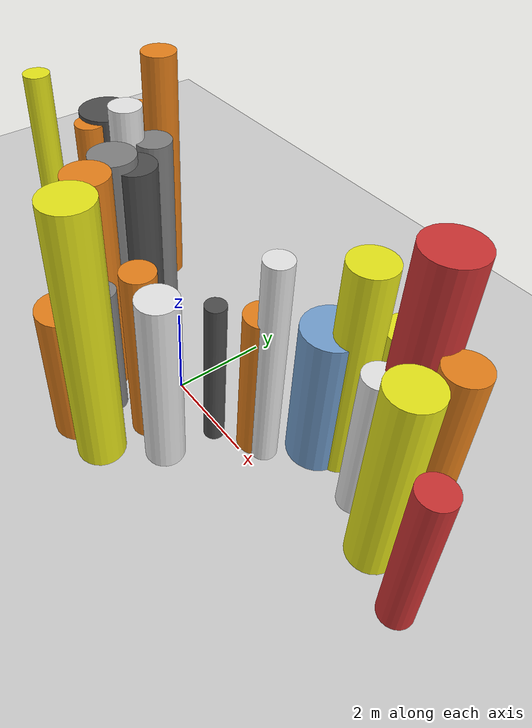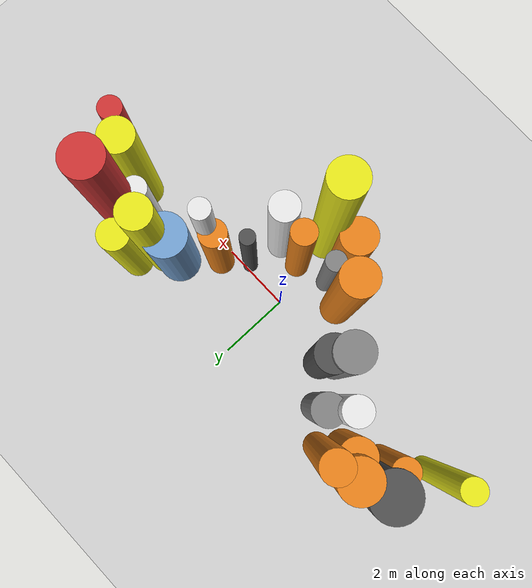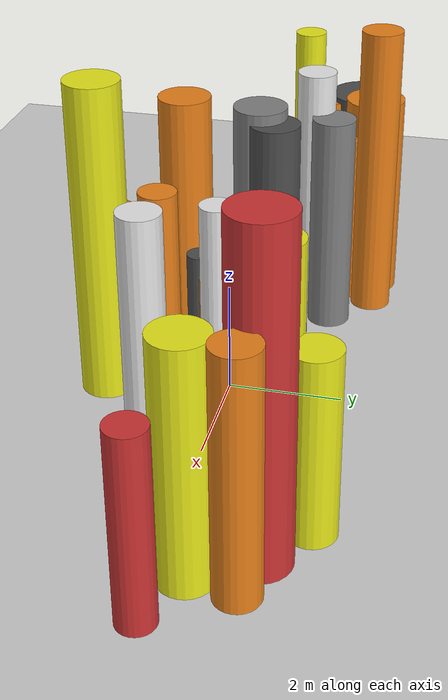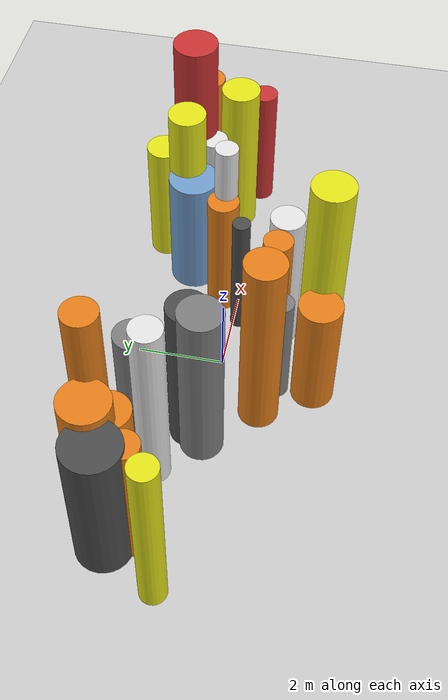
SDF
<?xml version='1.0'?>
<sdf version='1.6'>
  <world name='routeA_rl_v1__dense_recovery__rl_train__s_turn_multi_obstacle__000097'>
    <!-- Sun light -->
    <light name='sun' type='directional'>
      <cast_shadows>1</cast_shadows>
      <pose>0 0 10 0 0 0</pose>
      <diffuse>0.8 0.8 0.8 1</diffuse>
      <specular>0.2 0.2 0.2 1</specular>
      <attenuation>
        <range>1000</range>
        <constant>0.9</constant>
        <linear>0.01</linear>
        <quadratic>0.001</quadratic>
      </attenuation>
      <direction>-0.5 0.1 -0.9</direction>
    </light>

    <!-- Ground plane -->
    <model name='ground_plane'>
      <static>1</static>
      <link name='link'>
        <collision name='collision'>
          <geometry>
            <plane>
              <normal>0 0 1</normal>
              <size>100 100</size>
            </plane>
          </geometry>
          <surface>
            <contact>
              <collide_bitmask>65535</collide_bitmask>
              <ode/>
            </contact>
            <friction>
              <ode>
                <mu>100</mu>
                <mu2>50</mu2>
              </ode>
              <torsional><ode/></torsional>
            </friction>
            <bounce/>
          </surface>
          <max_contacts>10</max_contacts>
        </collision>
        <visual name='visual'>
          <cast_shadows>0</cast_shadows>
          <geometry>
            <plane>
              <normal>0 0 1</normal>
              <size>100 100</size>
            </plane>
          </geometry>
          <material>
            <script>
              <uri>file://media/materials/scripts/gazebo.material</uri>
              <n>Gazebo/Grey</n>
            </script>
          </material>
        </visual>
      </link>
    </model>

    <!-- Environment -->
    <magnetic_field>6e-06 2.3e-05 -4.2e-05</magnetic_field>
    <atmosphere type='adiabatic'/>
    <physics name='default_physics' default='0' type='ode'>
      <gravity>0 0 -9.8</gravity>
      <max_step_size>0.004</max_step_size>
      <real_time_factor>1</real_time_factor>
      <real_time_update_rate>250</real_time_update_rate>
    </physics>
    <scene>
      <ambient>0.4 0.4 0.4 1</ambient>
      <background>0.7 0.7 0.7 1</background>
      <shadows>1</shadows>
    </scene>
    <wind/>
    <spherical_coordinates>
      <surface_model>EARTH_WGS84</surface_model>
      <latitude_deg>0</latitude_deg>
      <longitude_deg>0</longitude_deg>
      <elevation>0</elevation>
      <heading_deg>0</heading_deg>
    </spherical_coordinates>

    <!-- ============ OBSTACLES (28) ============ -->
    <model name='s_turn_obs_0'>
      <static>1</static>
      <link name='link'>
        <visual name='visual'>
          <geometry>
            <cylinder>
              <radius>0.3040</radius>
              <length>4.6498</length>
            </cylinder>
          </geometry>
          <material>
            <script>
              <n>Gazebo/Yellow</n>
              <uri>file://media/materials/scripts/gazebo.material</uri>
            </script>
            <ambient>0.9 0.9 0.1 1</ambient>
          </material>
        </visual>
        <collision name='collision'>
          <geometry>
            <cylinder>
              <radius>0.3040</radius>
              <length>4.6498</length>
            </cylinder>
          </geometry>
          <max_contacts>10</max_contacts>
          <surface>
            <contact><ode/></contact>
            <bounce/>
            <friction>
              <ode><mu>1</mu><mu2>1</mu2></ode>
              <torsional><ode/></torsional>
            </friction>
          </surface>
        </collision>
      </link>
      <pose>-6.0000 0.2624 2.3249 0 0 0.0000</pose>
    </model>

    <model name='s_turn_obs_1'>
      <static>1</static>
      <link name='link'>
        <visual name='visual'>
          <geometry>
            <cylinder>
              <radius>0.6316</radius>
              <length>3.7598</length>
            </cylinder>
          </geometry>
          <material>
            <script>
              <n>Gazebo/DarkGrey</n>
              <uri>file://media/materials/scripts/gazebo.material</uri>
            </script>
            <ambient>0.3 0.3 0.3 1</ambient>
          </material>
        </visual>
        <collision name='collision'>
          <geometry>
            <cylinder>
              <radius>0.6316</radius>
              <length>3.7598</length>
            </cylinder>
          </geometry>
          <max_contacts>10</max_contacts>
          <surface>
            <contact><ode/></contact>
            <bounce/>
            <friction>
              <ode><mu>1</mu><mu2>1</mu2></ode>
              <torsional><ode/></torsional>
            </friction>
          </surface>
        </collision>
      </link>
      <pose>-5.2000 1.4873 1.8799 0 0 0.0000</pose>
    </model>

    <model name='s_turn_obs_2'>
      <static>1</static>
      <link name='link'>
        <visual name='visual'>
          <geometry>
            <cylinder>
              <radius>0.5539</radius>
              <length>3.9571</length>
            </cylinder>
          </geometry>
          <material>
            <script>
              <n>Gazebo/Orange</n>
              <uri>file://media/materials/scripts/gazebo.material</uri>
            </script>
            <ambient>0.9 0.5 0.1 1</ambient>
          </material>
        </visual>
        <collision name='collision'>
          <geometry>
            <cylinder>
              <radius>0.5539</radius>
              <length>3.9571</length>
            </cylinder>
          </geometry>
          <max_contacts>10</max_contacts>
          <surface>
            <contact><ode/></contact>
            <bounce/>
            <friction>
              <ode><mu>1</mu><mu2>1</mu2></ode>
              <torsional><ode/></torsional>
            </friction>
          </surface>
        </collision>
      </link>
      <pose>-4.4000 1.8220 1.9786 0 0 0.0000</pose>
    </model>

    <model name='s_turn_obs_3'>
      <static>1</static>
      <link name='link'>
        <visual name='visual'>
          <geometry>
            <cylinder>
              <radius>0.3790</radius>
              <length>5.5660</length>
            </cylinder>
          </geometry>
          <material>
            <script>
              <n>Gazebo/Orange</n>
              <uri>file://media/materials/scripts/gazebo.material</uri>
            </script>
            <ambient>0.9 0.5 0.1 1</ambient>
          </material>
        </visual>
        <collision name='collision'>
          <geometry>
            <cylinder>
              <radius>0.3790</radius>
              <length>5.5660</length>
            </cylinder>
          </geometry>
          <max_contacts>10</max_contacts>
          <surface>
            <contact><ode/></contact>
            <bounce/>
            <friction>
              <ode><mu>1</mu><mu2>1</mu2></ode>
              <torsional><ode/></torsional>
            </friction>
          </surface>
        </collision>
      </link>
      <pose>-3.6000 1.9891 2.7830 0 0 0.0000</pose>
    </model>

    <model name='s_turn_obs_4'>
      <static>1</static>
      <link name='link'>
        <visual name='visual'>
          <geometry>
            <cylinder>
              <radius>0.4001</radius>
              <length>4.1296</length>
            </cylinder>
          </geometry>
          <material>
            <script>
              <n>Gazebo/Grey</n>
              <uri>file://media/materials/scripts/gazebo.material</uri>
            </script>
            <ambient>0.5 0.5 0.5 1</ambient>
          </material>
        </visual>
        <collision name='collision'>
          <geometry>
            <cylinder>
              <radius>0.4001</radius>
              <length>4.1296</length>
            </cylinder>
          </geometry>
          <max_contacts>10</max_contacts>
          <surface>
            <contact><ode/></contact>
            <bounce/>
            <friction>
              <ode><mu>1</mu><mu2>1</mu2></ode>
              <torsional><ode/></torsional>
            </friction>
          </surface>
        </collision>
      </link>
      <pose>-2.8000 1.2855 2.0648 0 0 0.0000</pose>
    </model>

    <model name='s_turn_obs_5'>
      <static>1</static>
      <link name='link'>
        <visual name='visual'>
          <geometry>
            <cylinder>
              <radius>0.4592</radius>
              <length>4.2537</length>
            </cylinder>
          </geometry>
          <material>
            <script>
              <n>Gazebo/DarkGrey</n>
              <uri>file://media/materials/scripts/gazebo.material</uri>
            </script>
            <ambient>0.3 0.3 0.3 1</ambient>
          </material>
        </visual>
        <collision name='collision'>
          <geometry>
            <cylinder>
              <radius>0.4592</radius>
              <length>4.2537</length>
            </cylinder>
          </geometry>
          <max_contacts>10</max_contacts>
          <surface>
            <contact><ode/></contact>
            <bounce/>
            <friction>
              <ode><mu>1</mu><mu2>1</mu2></ode>
              <torsional><ode/></torsional>
            </friction>
          </surface>
        </collision>
      </link>
      <pose>-2.0000 0.3585 2.1269 0 0 0.0000</pose>
    </model>

    <model name='s_turn_obs_6'>
      <static>1</static>
      <link name='link'>
        <visual name='visual'>
          <geometry>
            <cylinder>
              <radius>0.4593</radius>
              <length>4.9485</length>
            </cylinder>
          </geometry>
          <material>
            <script>
              <n>Gazebo/Orange</n>
              <uri>file://media/materials/scripts/gazebo.material</uri>
            </script>
            <ambient>0.9 0.5 0.1 1</ambient>
          </material>
        </visual>
        <collision name='collision'>
          <geometry>
            <cylinder>
              <radius>0.4593</radius>
              <length>4.9485</length>
            </cylinder>
          </geometry>
          <max_contacts>10</max_contacts>
          <surface>
            <contact><ode/></contact>
            <bounce/>
            <friction>
              <ode><mu>1</mu><mu2>1</mu2></ode>
              <torsional><ode/></torsional>
            </friction>
          </surface>
        </collision>
      </link>
      <pose>-1.2000 -1.0525 2.4742 0 0 0.0000</pose>
    </model>

    <model name='s_turn_obs_7'>
      <static>1</static>
      <link name='link'>
        <visual name='visual'>
          <geometry>
            <cylinder>
              <radius>0.4913</radius>
              <length>3.0375</length>
            </cylinder>
          </geometry>
          <material>
            <script>
              <n>Gazebo/Orange</n>
              <uri>file://media/materials/scripts/gazebo.material</uri>
            </script>
            <ambient>0.9 0.5 0.1 1</ambient>
          </material>
        </visual>
        <collision name='collision'>
          <geometry>
            <cylinder>
              <radius>0.4913</radius>
              <length>3.0375</length>
            </cylinder>
          </geometry>
          <max_contacts>10</max_contacts>
          <surface>
            <contact><ode/></contact>
            <bounce/>
            <friction>
              <ode><mu>1</mu><mu2>1</mu2></ode>
              <torsional><ode/></torsional>
            </friction>
          </surface>
        </collision>
      </link>
      <pose>-0.4000 -2.1757 1.5187 0 0 0.0000</pose>
    </model>

    <model name='s_turn_obs_8'>
      <static>1</static>
      <link name='link'>
        <visual name='visual'>
          <geometry>
            <cylinder>
              <radius>0.4744</radius>
              <length>5.7330</length>
            </cylinder>
          </geometry>
          <material>
            <script>
              <n>Gazebo/Yellow</n>
              <uri>file://media/materials/scripts/gazebo.material</uri>
            </script>
            <ambient>0.9 0.9 0.1 1</ambient>
          </material>
        </visual>
        <collision name='collision'>
          <geometry>
            <cylinder>
              <radius>0.4744</radius>
              <length>5.7330</length>
            </cylinder>
          </geometry>
          <max_contacts>10</max_contacts>
          <surface>
            <contact><ode/></contact>
            <bounce/>
            <friction>
              <ode><mu>1</mu><mu2>1</mu2></ode>
              <torsional><ode/></torsional>
            </friction>
          </surface>
        </collision>
      </link>
      <pose>0.4000 -2.1245 2.8665 0 0 0.0000</pose>
    </model>

    <model name='s_turn_obs_9'>
      <static>1</static>
      <link name='link'>
        <visual name='visual'>
          <geometry>
            <cylinder>
              <radius>0.3886</radius>
              <length>3.8908</length>
            </cylinder>
          </geometry>
          <material>
            <script>
              <n>Gazebo/White</n>
              <uri>file://media/materials/scripts/gazebo.material</uri>
            </script>
            <ambient>0.9 0.9 0.9 1</ambient>
          </material>
        </visual>
        <collision name='collision'>
          <geometry>
            <cylinder>
              <radius>0.3886</radius>
              <length>3.8908</length>
            </cylinder>
          </geometry>
          <max_contacts>10</max_contacts>
          <surface>
            <contact><ode/></contact>
            <bounce/>
            <friction>
              <ode><mu>1</mu><mu2>1</mu2></ode>
              <torsional><ode/></torsional>
            </friction>
          </surface>
        </collision>
      </link>
      <pose>1.2000 -1.1757 1.9454 0 0 0.0000</pose>
    </model>

    <model name='s_turn_obs_10'>
      <static>1</static>
      <link name='link'>
        <visual name='visual'>
          <geometry>
            <cylinder>
              <radius>0.3665</radius>
              <length>3.3261</length>
            </cylinder>
          </geometry>
          <material>
            <script>
              <n>Gazebo/Orange</n>
              <uri>file://media/materials/scripts/gazebo.material</uri>
            </script>
            <ambient>0.9 0.5 0.1 1</ambient>
          </material>
        </visual>
        <collision name='collision'>
          <geometry>
            <cylinder>
              <radius>0.3665</radius>
              <length>3.3261</length>
            </cylinder>
          </geometry>
          <max_contacts>10</max_contacts>
          <surface>
            <contact><ode/></contact>
            <bounce/>
            <friction>
              <ode><mu>1</mu><mu2>1</mu2></ode>
              <torsional><ode/></torsional>
            </friction>
          </surface>
        </collision>
      </link>
      <pose>2.0000 0.3983 1.6631 0 0 0.0000</pose>
    </model>

    <model name='s_turn_obs_11'>
      <static>1</static>
      <link name='link'>
        <visual name='visual'>
          <geometry>
            <cylinder>
              <radius>0.5840</radius>
              <length>3.1665</length>
            </cylinder>
          </geometry>
          <material>
            <script>
              <n>Gazebo/Blue</n>
              <uri>file://media/materials/scripts/gazebo.material</uri>
            </script>
            <ambient>0.447 0.624 0.812 1</ambient>
          </material>
        </visual>
        <collision name='collision'>
          <geometry>
            <cylinder>
              <radius>0.5840</radius>
              <length>3.1665</length>
            </cylinder>
          </geometry>
          <max_contacts>10</max_contacts>
          <surface>
            <contact><ode/></contact>
            <bounce/>
            <friction>
              <ode><mu>1</mu><mu2>1</mu2></ode>
              <torsional><ode/></torsional>
            </friction>
          </surface>
        </collision>
      </link>
      <pose>2.8000 1.2576 1.5833 0 0 0.0000</pose>
    </model>

    <model name='s_turn_obs_12'>
      <static>1</static>
      <link name='link'>
        <visual name='visual'>
          <geometry>
            <cylinder>
              <radius>0.4106</radius>
              <length>3.2779</length>
            </cylinder>
          </geometry>
          <material>
            <script>
              <n>Gazebo/Yellow</n>
              <uri>file://media/materials/scripts/gazebo.material</uri>
            </script>
            <ambient>0.9 0.9 0.1 1</ambient>
          </material>
        </visual>
        <collision name='collision'>
          <geometry>
            <cylinder>
              <radius>0.4106</radius>
              <length>3.2779</length>
            </cylinder>
          </geometry>
          <max_contacts>10</max_contacts>
          <surface>
            <contact><ode/></contact>
            <bounce/>
            <friction>
              <ode><mu>1</mu><mu2>1</mu2></ode>
              <torsional><ode/></torsional>
            </friction>
          </surface>
        </collision>
      </link>
      <pose>3.6000 2.1407 1.6390 0 0 0.0000</pose>
    </model>

    <model name='s_turn_obs_13'>
      <static>1</static>
      <link name='link'>
        <visual name='visual'>
          <geometry>
            <cylinder>
              <radius>0.5122</radius>
              <length>5.7580</length>
            </cylinder>
          </geometry>
          <material>
            <script>
              <n>Gazebo/Red</n>
              <uri>file://media/materials/scripts/gazebo.material</uri>
            </script>
            <ambient>0.8 0.2 0.2 1</ambient>
          </material>
        </visual>
        <collision name='collision'>
          <geometry>
            <cylinder>
              <radius>0.5122</radius>
              <length>5.7580</length>
            </cylinder>
          </geometry>
          <max_contacts>10</max_contacts>
          <surface>
            <contact><ode/></contact>
            <bounce/>
            <friction>
              <ode><mu>1</mu><mu2>1</mu2></ode>
              <torsional><ode/></torsional>
            </friction>
          </surface>
        </collision>
      </link>
      <pose>4.4000 1.5222 2.8790 0 0 0.0000</pose>
    </model>

    <model name='s_turn_obs_14'>
      <static>1</static>
      <link name='link'>
        <visual name='visual'>
          <geometry>
            <cylinder>
              <radius>0.3800</radius>
              <length>4.2015</length>
            </cylinder>
          </geometry>
          <material>
            <script>
              <n>Gazebo/Orange</n>
              <uri>file://media/materials/scripts/gazebo.material</uri>
            </script>
            <ambient>0.9 0.5 0.1 1</ambient>
          </material>
        </visual>
        <collision name='collision'>
          <geometry>
            <cylinder>
              <radius>0.3800</radius>
              <length>4.2015</length>
            </cylinder>
          </geometry>
          <max_contacts>10</max_contacts>
          <surface>
            <contact><ode/></contact>
            <bounce/>
            <friction>
              <ode><mu>1</mu><mu2>1</mu2></ode>
              <torsional><ode/></torsional>
            </friction>
          </surface>
        </collision>
      </link>
      <pose>5.2000 1.3676 2.1007 0 0 0.0000</pose>
    </model>

    <model name='s_turn_obs_15'>
      <static>1</static>
      <link name='link'>
        <visual name='visual'>
          <geometry>
            <cylinder>
              <radius>0.3203</radius>
              <length>3.3130</length>
            </cylinder>
          </geometry>
          <material>
            <script>
              <n>Gazebo/Red</n>
              <uri>file://media/materials/scripts/gazebo.material</uri>
            </script>
            <ambient>0.8 0.2 0.2 1</ambient>
          </material>
        </visual>
        <collision name='collision'>
          <geometry>
            <cylinder>
              <radius>0.3203</radius>
              <length>3.3130</length>
            </cylinder>
          </geometry>
          <max_contacts>10</max_contacts>
          <surface>
            <contact><ode/></contact>
            <bounce/>
            <friction>
              <ode><mu>1</mu><mu2>1</mu2></ode>
              <torsional><ode/></torsional>
            </friction>
          </surface>
        </collision>
      </link>
      <pose>6.0000 0.1179 1.6565 0 0 0.0000</pose>
    </model>

    <model name='s_turn_obs2_0'>
      <static>1</static>
      <link name='link'>
        <visual name='visual'>
          <geometry>
            <cylinder>
              <radius>0.3457</radius>
              <length>3.6675</length>
            </cylinder>
          </geometry>
          <material>
            <script>
              <n>Gazebo/Orange</n>
              <uri>file://media/materials/scripts/gazebo.material</uri>
            </script>
            <ambient>0.9 0.5 0.1 1</ambient>
          </material>
        </visual>
        <collision name='collision'>
          <geometry>
            <cylinder>
              <radius>0.3457</radius>
              <length>3.6675</length>
            </cylinder>
          </geometry>
          <max_contacts>10</max_contacts>
          <surface>
            <contact><ode/></contact>
            <bounce/>
            <friction>
              <ode><mu>1</mu><mu2>1</mu2></ode>
              <torsional><ode/></torsional>
            </friction>
          </surface>
        </collision>
      </link>
      <pose>-5.0000 0.9364 1.8337 0 0 0.0000</pose>
    </model>

    <model name='s_turn_obs2_1'>
      <static>1</static>
      <link name='link'>
        <visual name='visual'>
          <geometry>
            <cylinder>
              <radius>0.4718</radius>
              <length>3.3409</length>
            </cylinder>
          </geometry>
          <material>
            <script>
              <n>Gazebo/Orange</n>
              <uri>file://media/materials/scripts/gazebo.material</uri>
            </script>
            <ambient>0.9 0.5 0.1 1</ambient>
          </material>
        </visual>
        <collision name='collision'>
          <geometry>
            <cylinder>
              <radius>0.4718</radius>
              <length>3.3409</length>
            </cylinder>
          </geometry>
          <max_contacts>10</max_contacts>
          <surface>
            <contact><ode/></contact>
            <bounce/>
            <friction>
              <ode><mu>1</mu><mu2>1</mu2></ode>
              <torsional><ode/></torsional>
            </friction>
          </surface>
        </collision>
      </link>
      <pose>-4.0909 1.4737 1.6704 0 0 0.0000</pose>
    </model>

    <model name='s_turn_obs2_2'>
      <static>1</static>
      <link name='link'>
        <visual name='visual'>
          <geometry>
            <cylinder>
              <radius>0.3536</radius>
              <length>4.8455</length>
            </cylinder>
          </geometry>
          <material>
            <script>
              <n>Gazebo/White</n>
              <uri>file://media/materials/scripts/gazebo.material</uri>
            </script>
            <ambient>0.9 0.9 0.9 1</ambient>
          </material>
        </visual>
        <collision name='collision'>
          <geometry>
            <cylinder>
              <radius>0.3536</radius>
              <length>4.8455</length>
            </cylinder>
          </geometry>
          <max_contacts>10</max_contacts>
          <surface>
            <contact><ode/></contact>
            <bounce/>
            <friction>
              <ode><mu>1</mu><mu2>1</mu2></ode>
              <torsional><ode/></torsional>
            </friction>
          </surface>
        </collision>
      </link>
      <pose>-3.1818 0.8929 2.4228 0 0 0.0000</pose>
    </model>

    <model name='s_turn_obs2_3'>
      <static>1</static>
      <link name='link'>
        <visual name='visual'>
          <geometry>
            <cylinder>
              <radius>0.4893</radius>
              <length>4.4534</length>
            </cylinder>
          </geometry>
          <material>
            <script>
              <n>Gazebo/Grey</n>
              <uri>file://media/materials/scripts/gazebo.material</uri>
            </script>
            <ambient>0.5 0.5 0.5 1</ambient>
          </material>
        </visual>
        <collision name='collision'>
          <geometry>
            <cylinder>
              <radius>0.4893</radius>
              <length>4.4534</length>
            </cylinder>
          </geometry>
          <max_contacts>10</max_contacts>
          <surface>
            <contact><ode/></contact>
            <bounce/>
            <friction>
              <ode><mu>1</mu><mu2>1</mu2></ode>
              <torsional><ode/></torsional>
            </friction>
          </surface>
        </collision>
      </link>
      <pose>-2.2727 0.0371 2.2267 0 0 0.0000</pose>
    </model>

    <model name='s_turn_obs2_4'>
      <static>1</static>
      <link name='link'>
        <visual name='visual'>
          <geometry>
            <cylinder>
              <radius>0.2072</radius>
              <length>3.7179</length>
            </cylinder>
          </geometry>
          <material>
            <script>
              <n>Gazebo/White</n>
              <uri>file://media/materials/scripts/gazebo.material</uri>
            </script>
            <ambient>0.9 0.9 0.9 1</ambient>
          </material>
        </visual>
        <collision name='collision'>
          <geometry>
            <cylinder>
              <radius>0.2072</radius>
              <length>3.7179</length>
            </cylinder>
          </geometry>
          <max_contacts>10</max_contacts>
          <surface>
            <contact><ode/></contact>
            <bounce/>
            <friction>
              <ode><mu>1</mu><mu2>1</mu2></ode>
              <torsional><ode/></torsional>
            </friction>
          </surface>
        </collision>
      </link>
      <pose>-1.3636 -1.0242 1.8590 0 0 0.0000</pose>
    </model>

    <model name='s_turn_obs2_5'>
      <static>1</static>
      <link name='link'>
        <visual name='visual'>
          <geometry>
            <cylinder>
              <radius>0.2721</radius>
              <length>3.0021</length>
            </cylinder>
          </geometry>
          <material>
            <script>
              <n>Gazebo/Grey</n>
              <uri>file://media/materials/scripts/gazebo.material</uri>
            </script>
            <ambient>0.5 0.5 0.5 1</ambient>
          </material>
        </visual>
        <collision name='collision'>
          <geometry>
            <cylinder>
              <radius>0.2721</radius>
              <length>3.0021</length>
            </cylinder>
          </geometry>
          <max_contacts>10</max_contacts>
          <surface>
            <contact><ode/></contact>
            <bounce/>
            <friction>
              <ode><mu>1</mu><mu2>1</mu2></ode>
              <torsional><ode/></torsional>
            </friction>
          </surface>
        </collision>
      </link>
      <pose>-0.4545 -1.3501 1.5011 0 0 0.0000</pose>
    </model>

    <model name='s_turn_obs2_6'>
      <static>1</static>
      <link name='link'>
        <visual name='visual'>
          <geometry>
            <cylinder>
              <radius>0.3307</radius>
              <length>3.9107</length>
            </cylinder>
          </geometry>
          <material>
            <script>
              <n>Gazebo/Orange</n>
              <uri>file://media/materials/scripts/gazebo.material</uri>
            </script>
            <ambient>0.9 0.5 0.1 1</ambient>
          </material>
        </visual>
        <collision name='collision'>
          <geometry>
            <cylinder>
              <radius>0.3307</radius>
              <length>3.9107</length>
            </cylinder>
          </geometry>
          <max_contacts>10</max_contacts>
          <surface>
            <contact><ode/></contact>
            <bounce/>
            <friction>
              <ode><mu>1</mu><mu2>1</mu2></ode>
              <torsional><ode/></torsional>
            </friction>
          </surface>
        </collision>
      </link>
      <pose>0.4545 -1.0830 1.9553 0 0 0.0000</pose>
    </model>

    <model name='s_turn_obs2_7'>
      <static>1</static>
      <link name='link'>
        <visual name='visual'>
          <geometry>
            <cylinder>
              <radius>0.2075</radius>
              <length>3.3444</length>
            </cylinder>
          </geometry>
          <material>
            <script>
              <n>Gazebo/DarkGrey</n>
              <uri>file://media/materials/scripts/gazebo.material</uri>
            </script>
            <ambient>0.3 0.3 0.3 1</ambient>
          </material>
        </visual>
        <collision name='collision'>
          <geometry>
            <cylinder>
              <radius>0.2075</radius>
              <length>3.3444</length>
            </cylinder>
          </geometry>
          <max_contacts>10</max_contacts>
          <surface>
            <contact><ode/></contact>
            <bounce/>
            <friction>
              <ode><mu>1</mu><mu2>1</mu2></ode>
              <torsional><ode/></torsional>
            </friction>
          </surface>
        </collision>
      </link>
      <pose>1.3636 -0.1357 1.6722 0 0 0.0000</pose>
    </model>

    <model name='s_turn_obs2_8'>
      <static>1</static>
      <link name='link'>
        <visual name='visual'>
          <geometry>
            <cylinder>
              <radius>0.2661</radius>
              <length>4.6733</length>
            </cylinder>
          </geometry>
          <material>
            <script>
              <n>Gazebo/White</n>
              <uri>file://media/materials/scripts/gazebo.material</uri>
            </script>
            <ambient>0.9 0.9 0.9 1</ambient>
          </material>
        </visual>
        <collision name='collision'>
          <geometry>
            <cylinder>
              <radius>0.2661</radius>
              <length>4.6733</length>
            </cylinder>
          </geometry>
          <max_contacts>10</max_contacts>
          <surface>
            <contact><ode/></contact>
            <bounce/>
            <friction>
              <ode><mu>1</mu><mu2>1</mu2></ode>
              <torsional><ode/></torsional>
            </friction>
          </surface>
        </collision>
      </link>
      <pose>2.2727 0.3848 2.3366 0 0 0.0000</pose>
    </model>

    <model name='s_turn_obs2_9'>
      <static>1</static>
      <link name='link'>
        <visual name='visual'>
          <geometry>
            <cylinder>
              <radius>0.4353</radius>
              <length>4.7202</length>
            </cylinder>
          </geometry>
          <material>
            <script>
              <n>Gazebo/Yellow</n>
              <uri>file://media/materials/scripts/gazebo.material</uri>
            </script>
            <ambient>0.9 0.9 0.1 1</ambient>
          </material>
        </visual>
        <collision name='collision'>
          <geometry>
            <cylinder>
              <radius>0.4353</radius>
              <length>4.7202</length>
            </cylinder>
          </geometry>
          <max_contacts>10</max_contacts>
          <surface>
            <contact><ode/></contact>
            <bounce/>
            <friction>
              <ode><mu>1</mu><mu2>1</mu2></ode>
              <torsional><ode/></torsional>
            </friction>
          </surface>
        </collision>
      </link>
      <pose>3.1818 1.4718 2.3601 0 0 0.0000</pose>
    </model>

    <model name='s_turn_obs2_10'>
      <static>1</static>
      <link name='link'>
        <visual name='visual'>
          <geometry>
            <cylinder>
              <radius>0.3206</radius>
              <length>3.2931</length>
            </cylinder>
          </geometry>
          <material>
            <script>
              <n>Gazebo/White</n>
              <uri>file://media/materials/scripts/gazebo.material</uri>
            </script>
            <ambient>0.9 0.9 0.9 1</ambient>
          </material>
        </visual>
        <collision name='collision'>
          <geometry>
            <cylinder>
              <radius>0.3206</radius>
              <length>3.2931</length>
            </cylinder>
          </geometry>
          <max_contacts>10</max_contacts>
          <surface>
            <contact><ode/></contact>
            <bounce/>
            <friction>
              <ode><mu>1</mu><mu2>1</mu2></ode>
              <torsional><ode/></torsional>
            </friction>
          </surface>
        </collision>
      </link>
      <pose>4.0909 1.0213 1.6465 0 0 0.0000</pose>
    </model>

    <model name='s_turn_obs2_11'>
      <static>1</static>
      <link name='link'>
        <visual name='visual'>
          <geometry>
            <cylinder>
              <radius>0.4609</radius>
              <length>4.1422</length>
            </cylinder>
          </geometry>
          <material>
            <script>
              <n>Gazebo/Yellow</n>
              <uri>file://media/materials/scripts/gazebo.material</uri>
            </script>
            <ambient>0.9 0.9 0.1 1</ambient>
          </material>
        </visual>
        <collision name='collision'>
          <geometry>
            <cylinder>
              <radius>0.4609</radius>
              <length>4.1422</length>
            </cylinder>
          </geometry>
          <max_contacts>10</max_contacts>
          <surface>
            <contact><ode/></contact>
            <bounce/>
            <friction>
              <ode><mu>1</mu><mu2>1</mu2></ode>
              <torsional><ode/></torsional>
            </friction>
          </surface>
        </collision>
      </link>
      <pose>5.0000 0.5553 2.0711 0 0 0.0000</pose>
    </model>

    <!-- GUI camera -->
    <gui fullscreen='0'>
      <camera name='user_camera'>
        <pose>-15 0 18 0 0.85 0.15</pose>
        <view_controller>orbit</view_controller>
        <projection_type>perspective</projection_type>
      </camera>
    </gui>
  </world>
</sdf>
